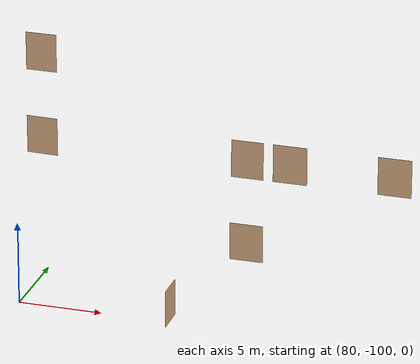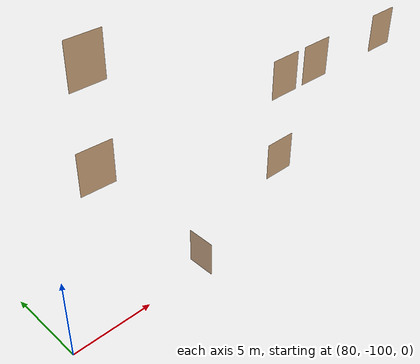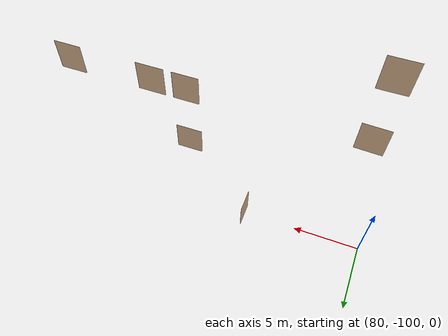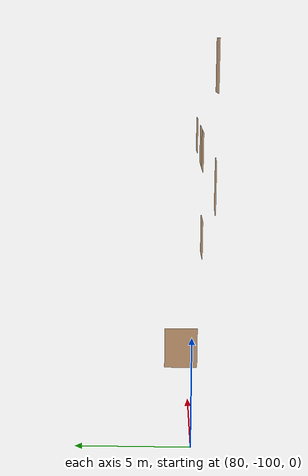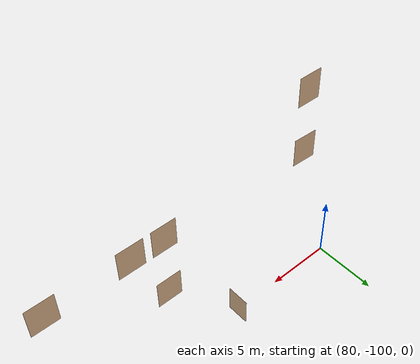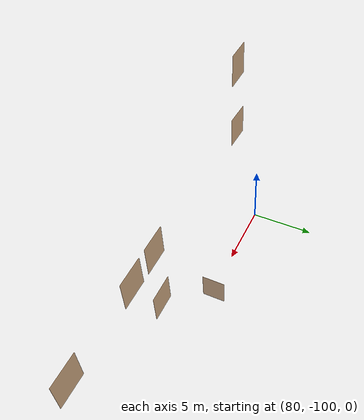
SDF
<sdf version="1.7">
 <world name="sim_world">
  <model name="puerta59">
   <pose>89.06060497583675 -99.73697870055486 0.0 0 0 1.5707963267948966</pose>
   <link name="right">
    <pose>0 0 1.11 0 0 0</pose>
    <visual name="right_visual">
     <geometry><box><size>1.7492625738321033 0.03 2.2</size></box></geometry>
     <material>
      <ambient>0.5 0.25 0 0.6</ambient>
      <diffuse>0.5 0.25 0 0.6</diffuse>
      <pbr><metal><metalness>0.0</metalness></metal></pbr>
     </material>
    </visual>
    <collision name="right_collision">
     <geometry><box><size>1.7492625738321033 0.03 2.2</size></box></geometry>
     <surface><contact><collide_bitmask>0x02</collide_bitmask></contact></surface>
    </collision>
    <inertial>
     <mass>50.0</mass>
     <inertia><ixx>20.17041666666667</ixx><iyy>32.91633146754048</iyy><izz>12.753414800873813</izz></inertia>
    </inertial>
   </link>
   <joint name="right_joint" type="revolute">
    <parent>world</parent>
    <child>right</child>
    <axis><xyz>0 0 -1</xyz><limit><lower>0</lower><upper>1.57</upper></limit></axis>
    <pose>0.8796312869160516 0 0 0 0 0</pose>
   </joint>
   <plugin name="register_component" filename="libregister_component.so">
    <component name="Door">
     <v_max_door>0.5</v_max_door>
     <a_max_door>0.3</a_max_door>
     <a_nom_door>0.15</a_nom_door>
     <dx_min_door>0.01</dx_min_door>
     <f_max_door>500.0</f_max_door>
     <ros_interface>true</ros_interface>
     <door name="puerta59" type="SwingDoor" left_joint_name="empty_joint" right_joint_name="right_joint"/>
    </component>
   </plugin>
  </model>
  <model name="puerta3169">
   <pose>93.90975529261846 -100.96544548674228 5.0 0 0 0.004886509969241648</pose>
   <link name="right">
    <pose>0 0 1.11 0 0 0</pose>
    <visual name="right_visual">
     <geometry><box><size>1.891761083114294 0.03 2.2</size></box></geometry>
     <material>
      <ambient>0.5 0.25 0 0.6</ambient>
      <diffuse>0.5 0.25 0 0.6</diffuse>
      <pbr><metal><metalness>0.0</metalness></metal></pbr>
     </material>
    </visual>
    <collision name="right_collision">
     <geometry><box><size>1.891761083114294 0.03 2.2</size></box></geometry>
     <surface><contact><collide_bitmask>0x02</collide_bitmask></contact></surface>
    </collision>
    <inertial>
     <mass>50.0</mass>
     <inertia><ixx>20.17041666666667</ixx><iyy>35.07816664827403</iyy><izz>14.915249981607362</izz></inertia>
    </inertial>
   </link>
   <joint name="right_joint" type="revolute">
    <parent>world</parent>
    <child>right</child>
    <axis><xyz>0 0 1</xyz><limit><lower>0</lower><upper>1.57</upper></limit></axis>
    <pose>0.950880541557147 0 0 0 0 0</pose>
   </joint>
   <plugin name="register_component" filename="libregister_component.so">
    <component name="Door">
     <v_max_door>0.5</v_max_door>
     <a_max_door>0.3</a_max_door>
     <a_nom_door>0.15</a_nom_door>
     <dx_min_door>0.01</dx_min_door>
     <f_max_door>500.0</f_max_door>
     <ros_interface>true</ros_interface>
     <door name="puerta3169" type="SwingDoor" left_joint_name="empty_joint" right_joint_name="right_joint"/>
    </component>
   </plugin>
  </model>
  <model name="puerta5264">
   <pose>81.99555464396516 -100.95673172767319 10.0 0 0 -0.03750335193699508</pose>
   <link name="right">
    <pose>0 0 1.11 0 0 0</pose>
    <visual name="right_visual">
     <geometry><box><size>1.8083297549690598 0.03 2.2</size></box></geometry>
     <material>
      <ambient>0.5 0.25 0 0.6</ambient>
      <diffuse>0.5 0.25 0 0.6</diffuse>
      <pbr><metal><metalness>0.0</metalness></metal></pbr>
     </material>
    </visual>
    <collision name="right_collision">
     <geometry><box><size>1.8083297549690598 0.03 2.2</size></box></geometry>
     <surface><contact><collide_bitmask>0x02</collide_bitmask></contact></surface>
    </collision>
    <inertial>
     <mass>50.0</mass>
     <inertia><ixx>20.17041666666667</ixx><iyy>33.79190209461025</iyy><izz>13.628985427943585</izz></inertia>
    </inertial>
   </link>
   <joint name="right_joint" type="revolute">
    <parent>world</parent>
    <child>right</child>
    <axis><xyz>0 0 1</xyz><limit><lower>0</lower><upper>1.57</upper></limit></axis>
    <pose>0.9091648774845299 0 0 0 0 0</pose>
   </joint>
   <plugin name="register_component" filename="libregister_component.so">
    <component name="Door">
     <v_max_door>0.5</v_max_door>
     <a_max_door>0.3</a_max_door>
     <a_nom_door>0.15</a_nom_door>
     <dx_min_door>0.01</dx_min_door>
     <f_max_door>500.0</f_max_door>
     <ros_interface>true</ros_interface>
     <door name="puerta5264" type="SwingDoor" left_joint_name="empty_joint" right_joint_name="right_joint"/>
    </component>
   </plugin>
  </model>
  <model name="puerta5266">
   <pose>93.9458941847386 -100.9370885682361 10.0 0 0 -4.6908770681394094e-06</pose>
   <link name="right">
    <pose>0 0 1.11 0 0 0</pose>
    <visual name="right_visual">
     <geometry><box><size>1.8254087914495236 0.03 2.2</size></box></geometry>
     <material>
      <ambient>0.5 0.25 0 0.6</ambient>
      <diffuse>0.5 0.25 0 0.6</diffuse>
      <pbr><metal><metalness>0.0</metalness></metal></pbr>
     </material>
    </visual>
    <collision name="right_collision">
     <geometry><box><size>1.8254087914495236 0.03 2.2</size></box></geometry>
     <surface><contact><collide_bitmask>0x02</collide_bitmask></contact></surface>
    </collision>
    <inertial>
     <mass>50.0</mass>
     <inertia><ixx>20.17041666666667</ixx><iyy>34.05048856625505</iyy><izz>13.887571899588377</izz></inertia>
    </inertial>
   </link>
   <joint name="right_joint" type="revolute">
    <parent>world</parent>
    <child>right</child>
    <axis><xyz>0 0 1</xyz><limit><lower>0</lower><upper>1.57</upper></limit></axis>
    <pose>0.9177043957247618 0 0 0 0 0</pose>
   </joint>
   <plugin name="register_component" filename="libregister_component.so">
    <component name="Door">
     <v_max_door>0.5</v_max_door>
     <a_max_door>0.3</a_max_door>
     <a_nom_door>0.15</a_nom_door>
     <dx_min_door>0.01</dx_min_door>
     <f_max_door>500.0</f_max_door>
     <ros_interface>true</ros_interface>
     <door name="puerta5266" type="SwingDoor" left_joint_name="empty_joint" right_joint_name="right_joint"/>
    </component>
   </plugin>
  </model>
  <model name="puerta5267">
   <pose>96.38074245618645 -100.93709998981004 10.0 0 0 3.1415879627127214</pose>
   <link name="right">
    <pose>0 0 1.11 0 0 0</pose>
    <visual name="right_visual">
     <geometry><box><size>1.9313658878501112 0.03 2.2</size></box></geometry>
     <material>
      <ambient>0.5 0.25 0 0.6</ambient>
      <diffuse>0.5 0.25 0 0.6</diffuse>
      <pbr><metal><metalness>0.0</metalness></metal></pbr>
     </material>
    </visual>
    <collision name="right_collision">
     <geometry><box><size>1.9313658878501112 0.03 2.2</size></box></geometry>
     <surface><contact><collide_bitmask>0x02</collide_bitmask></contact></surface>
    </collision>
    <inertial>
     <mass>50.0</mass>
     <inertia><ixx>20.17041666666667</ixx><iyy>35.709059136462706</iyy><izz>15.546142469796036</izz></inertia>
    </inertial>
   </link>
   <joint name="right_joint" type="revolute">
    <parent>world</parent>
    <child>right</child>
    <axis><xyz>0 0 -1</xyz><limit><lower>0</lower><upper>1.57</upper></limit></axis>
    <pose>0.9706829439250556 0 0 0 0 0</pose>
   </joint>
   <plugin name="register_component" filename="libregister_component.so">
    <component name="Door">
     <v_max_door>0.5</v_max_door>
     <a_max_door>0.3</a_max_door>
     <a_nom_door>0.15</a_nom_door>
     <dx_min_door>0.01</dx_min_door>
     <f_max_door>500.0</f_max_door>
     <ros_interface>true</ros_interface>
     <door name="puerta5267" type="SwingDoor" left_joint_name="empty_joint" right_joint_name="right_joint"/>
    </component>
   </plugin>
  </model>
  <model name="puerta5268">
   <pose>102.28317179276233 -100.93712767738047 10.0 0 0 3.141587962712715</pose>
   <link name="right">
    <pose>0 0 1.11 0 0 0</pose>
    <visual name="right_visual">
     <geometry><box><size>1.886635603993053 0.03 2.2</size></box></geometry>
     <material>
      <ambient>0.5 0.25 0 0.6</ambient>
      <diffuse>0.5 0.25 0 0.6</diffuse>
      <pbr><metal><metalness>0.0</metalness></metal></pbr>
     </material>
    </visual>
    <collision name="right_collision">
     <geometry><box><size>1.886635603993053 0.03 2.2</size></box></geometry>
     <surface><contact><collide_bitmask>0x02</collide_bitmask></contact></surface>
    </collision>
    <inertial>
     <mass>50.0</mass>
     <inertia><ixx>20.17041666666667</ixx><iyy>34.99747459272597</iyy><izz>14.8345579260593</izz></inertia>
    </inertial>
   </link>
   <joint name="right_joint" type="revolute">
    <parent>world</parent>
    <child>right</child>
    <axis><xyz>0 0 -1</xyz><limit><lower>0</lower><upper>1.57</upper></limit></axis>
    <pose>0.9483178019965265 0 0 0 0 0</pose>
   </joint>
   <plugin name="register_component" filename="libregister_component.so">
    <component name="Door">
     <v_max_door>0.5</v_max_door>
     <a_max_door>0.3</a_max_door>
     <a_nom_door>0.15</a_nom_door>
     <dx_min_door>0.01</dx_min_door>
     <f_max_door>500.0</f_max_door>
     <ros_interface>true</ros_interface>
     <door name="puerta5268" type="SwingDoor" left_joint_name="empty_joint" right_joint_name="right_joint"/>
    </component>
   </plugin>
  </model>
  <model name="puerta7201">
   <pose>82.03493588676257 -100.95732620562134 15.0 0 0 -3.998090321137679e-05</pose>
   <link name="right">
    <pose>0 0 1.11 0 0 0</pose>
    <visual name="right_visual">
     <geometry><box><size>1.7669808520528676 0.03 2.2</size></box></geometry>
     <material>
      <ambient>0.5 0.25 0 0.6</ambient>
      <diffuse>0.5 0.25 0 0.6</diffuse>
      <pbr><metal><metalness>0.0</metalness></metal></pbr>
     </material>
    </visual>
    <collision name="right_collision">
     <geometry><box><size>1.7669808520528676 0.03 2.2</size></box></geometry>
     <surface><contact><collide_bitmask>0x02</collide_bitmask></contact></surface>
    </collision>
    <inertial>
     <mass>50.0</mass>
     <inertia><ixx>20.17041666666667</ixx><iyy>33.17592221467283</iyy><izz>13.01300554800616</izz></inertia>
    </inertial>
   </link>
   <joint name="right_joint" type="revolute">
    <parent>world</parent>
    <child>right</child>
    <axis><xyz>0 0 1</xyz><limit><lower>0</lower><upper>1.57</upper></limit></axis>
    <pose>0.8884904260264338 0 0 0 0 0</pose>
   </joint>
   <plugin name="register_component" filename="libregister_component.so">
    <component name="Door">
     <v_max_door>0.5</v_max_door>
     <a_max_door>0.3</a_max_door>
     <a_nom_door>0.15</a_nom_door>
     <dx_min_door>0.01</dx_min_door>
     <f_max_door>500.0</f_max_door>
     <ros_interface>true</ros_interface>
     <door name="puerta7201" type="SwingDoor" left_joint_name="empty_joint" right_joint_name="right_joint"/>
    </component>
   </plugin>
  </model>
 </world>
</sdf>
